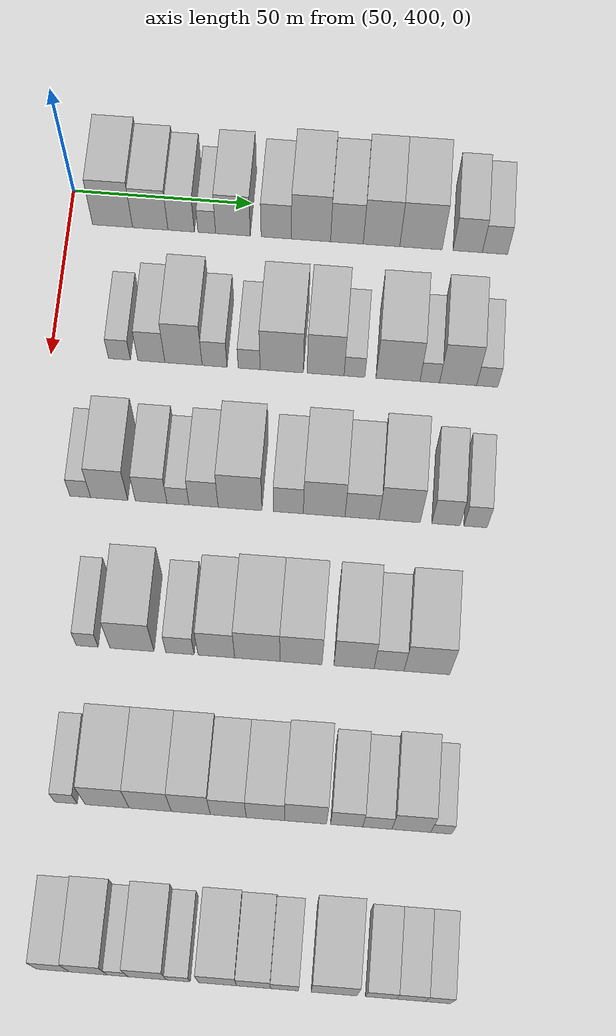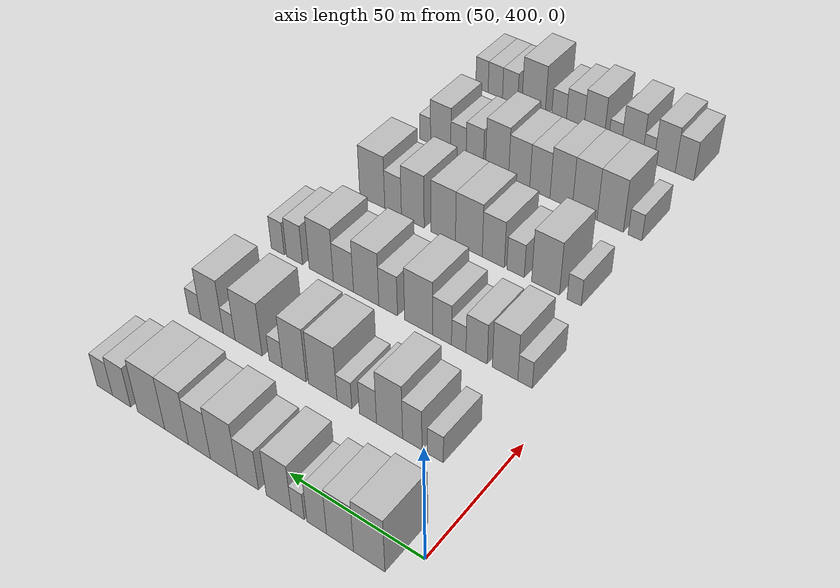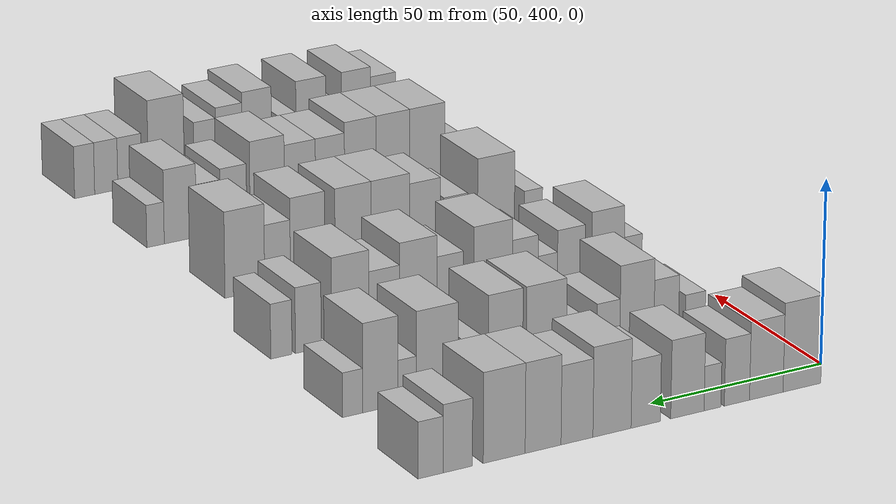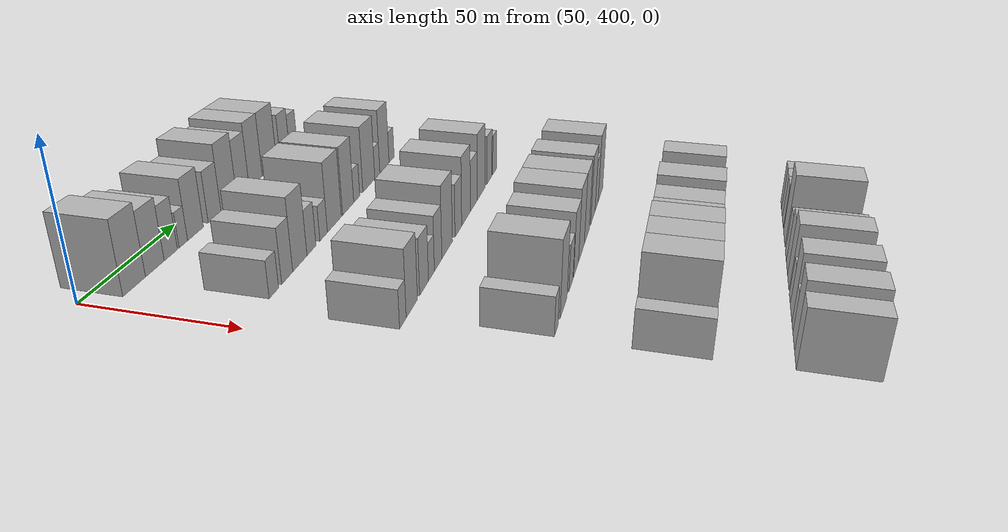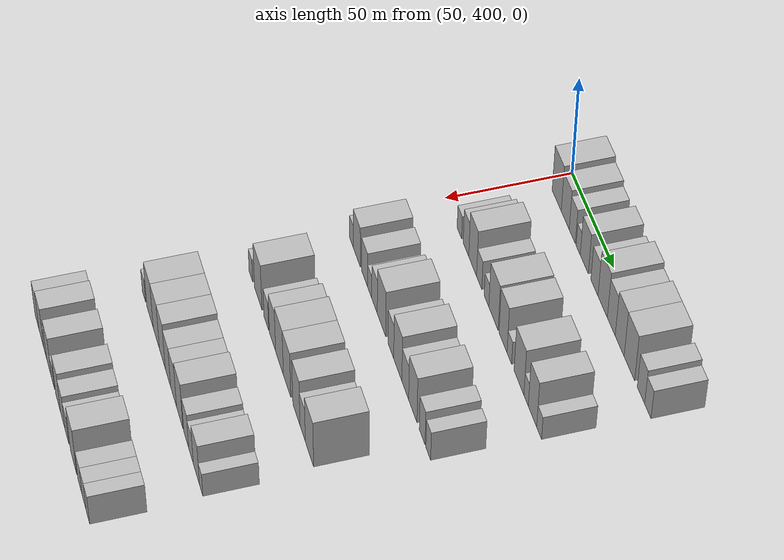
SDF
<sdf version="1.6">
 <world name="default">
  <model name="building_111">
   <static>1</static>
   <pose>50.0000 412.1072 0 0.000000 0.000000 0.000000</pose>
   <link name="link">
    <pose>0 0 12.00 0 0 0</pose>
    <collision name="collision"><geometry><box><size>20.0000 11.1560 24.0000</size></box></geometry></collision>
    <visual name="visual">
     <cast_shadows>0</cast_shadows>
     <geometry><box><size>20.0000 11.1560 24.0000</size></box></geometry>
     <material>
      <script>
       <uri>model://HANNAS_wall/materials/scripts</uri>
       <uri>model://HANNAS_wall/materials/textures</uri>
       <name>vrc/HANNAS_wall</name>
      </script>
     </material>
    </visual>
   </link>
  </model>
  <model name="building_112">
   <static>1</static>
   <pose>50.0000 422.6053 0 0.000000 0.000000 0.000000</pose>
   <link name="link">
    <pose>0 0 10.50 0 0 0</pose>
    <collision name="collision"><geometry><box><size>20.0000 9.8401 21.0000</size></box></geometry></collision>
    <visual name="visual">
     <cast_shadows>0</cast_shadows>
     <geometry><box><size>20.0000 9.8401 21.0000</size></box></geometry>
     <material>
      <script>
       <uri>model://HANNAS_wall/materials/scripts</uri>
       <uri>model://HANNAS_wall/materials/textures</uri>
       <name>vrc/HANNAS_wall</name>
      </script>
     </material>
    </visual>
   </link>
  </model>
  <model name="building_113">
   <static>1</static>
   <pose>50.0000 431.1931 0 0.000000 0.000000 0.000000</pose>
   <link name="link">
    <pose>0 0 9.00 0 0 0</pose>
    <collision name="collision"><geometry><box><size>20.0000 7.3356 18.0000</size></box></geometry></collision>
    <visual name="visual">
     <cast_shadows>0</cast_shadows>
     <geometry><box><size>20.0000 7.3356 18.0000</size></box></geometry>
     <material>
      <script>
       <uri>model://HANNAS_wall/materials/scripts</uri>
       <uri>model://HANNAS_wall/materials/textures</uri>
       <name>vrc/HANNAS_wall</name>
      </script>
     </material>
    </visual>
   </link>
  </model>
  <model name="building_114">
   <static>1</static>
   <pose>50.0000 438.3121 0 0.000000 0.000000 0.000000</pose>
   <link name="link">
    <pose>0 0 6.00 0 0 0</pose>
    <collision name="collision"><geometry><box><size>20.0000 4.9024 12.0000</size></box></geometry></collision>
    <visual name="visual">
     <cast_shadows>0</cast_shadows>
     <geometry><box><size>20.0000 4.9024 12.0000</size></box></geometry>
     <material>
      <script>
       <uri>model://HANNAS_wall/materials/scripts</uri>
       <uri>model://HANNAS_wall/materials/textures</uri>
       <name>vrc/HANNAS_wall</name>
      </script>
     </material>
    </visual>
   </link>
  </model>
  <model name="building_115">
   <static>1</static>
   <pose>50.0000 445.5779 0 0.000000 0.000000 0.000000</pose>
   <link name="link">
    <pose>0 0 10.50 0 0 0</pose>
    <collision name="collision"><geometry><box><size>20.0000 9.6292 21.0000</size></box></geometry></collision>
    <visual name="visual">
     <cast_shadows>0</cast_shadows>
     <geometry><box><size>20.0000 9.6292 21.0000</size></box></geometry>
     <material>
      <script>
       <uri>model://HANNAS_wall/materials/scripts</uri>
       <uri>model://HANNAS_wall/materials/textures</uri>
       <name>vrc/HANNAS_wall</name>
      </script>
     </material>
    </visual>
   </link>
  </model>
  <model name="building_116">
   <static>1</static>
   <pose>50.0000 457.5779 0 0.000000 0.000000 0.000000</pose>
   <link name="link">
    <pose>0 0 9.00 0 0 0</pose>
    <collision name="collision"><geometry><box><size>20.0000 8.3707 18.0000</size></box></geometry></collision>
    <visual name="visual">
     <cast_shadows>0</cast_shadows>
     <geometry><box><size>20.0000 8.3707 18.0000</size></box></geometry>
     <material>
      <script>
       <uri>model://HANNAS_wall/materials/scripts</uri>
       <uri>model://HANNAS_wall/materials/textures</uri>
       <name>vrc/HANNAS_wall</name>
      </script>
     </material>
    </visual>
   </link>
  </model>
  <model name="building_117">
   <static>1</static>
   <pose>50.0000 467.1968 0 0.000000 0.000000 0.000000</pose>
   <link name="link">
    <pose>0 0 12.00 0 0 0</pose>
    <collision name="collision"><geometry><box><size>20.0000 10.8672 24.0000</size></box></geometry></collision>
    <visual name="visual">
     <cast_shadows>0</cast_shadows>
     <geometry><box><size>20.0000 10.8672 24.0000</size></box></geometry>
     <material>
      <script>
       <uri>model://HANNAS_wall/materials/scripts</uri>
       <uri>model://HANNAS_wall/materials/textures</uri>
       <name>vrc/HANNAS_wall</name>
      </script>
     </material>
    </visual>
   </link>
  </model>
  <model name="building_118">
   <static>1</static>
   <pose>50.0000 477.1448 0 0.000000 0.000000 0.000000</pose>
   <link name="link">
    <pose>0 0 10.50 0 0 0</pose>
    <collision name="collision"><geometry><box><size>20.0000 9.0289 21.0000</size></box></geometry></collision>
    <visual name="visual">
     <cast_shadows>0</cast_shadows>
     <geometry><box><size>20.0000 9.0289 21.0000</size></box></geometry>
     <material>
      <script>
       <uri>model://HANNAS_wall/materials/scripts</uri>
       <uri>model://HANNAS_wall/materials/textures</uri>
       <name>vrc/HANNAS_wall</name>
      </script>
     </material>
    </visual>
   </link>
  </model>
  <model name="building_119">
   <static>1</static>
   <pose>50.0000 486.7063 0 0.000000 0.000000 0.000000</pose>
   <link name="link">
    <pose>0 0 12.00 0 0 0</pose>
    <collision name="collision"><geometry><box><size>20.0000 10.0941 24.0000</size></box></geometry></collision>
    <visual name="visual">
     <cast_shadows>0</cast_shadows>
     <geometry><box><size>20.0000 10.0941 24.0000</size></box></geometry>
     <material>
      <script>
       <uri>model://HANNAS_wall/materials/scripts</uri>
       <uri>model://HANNAS_wall/materials/textures</uri>
       <name>vrc/HANNAS_wall</name>
      </script>
     </material>
    </visual>
   </link>
  </model>
  <model name="building_120">
   <static>1</static>
   <pose>50.0000 497.6066 0 0.000000 0.000000 0.000000</pose>
   <link name="link">
    <pose>0 0 12.00 0 0 0</pose>
    <collision name="collision"><geometry><box><size>20.0000 11.7064 24.0000</size></box></geometry></collision>
    <visual name="visual">
     <cast_shadows>0</cast_shadows>
     <geometry><box><size>20.0000 11.7064 24.0000</size></box></geometry>
     <material>
      <script>
       <uri>model://HANNAS_wall/materials/scripts</uri>
       <uri>model://HANNAS_wall/materials/textures</uri>
       <name>vrc/HANNAS_wall</name>
      </script>
     </material>
    </visual>
   </link>
  </model>
  <model name="building_121">
   <static>1</static>
   <pose>50.0000 510.4955 0 0.000000 0.000000 0.000000</pose>
   <link name="link">
    <pose>0 0 9.00 0 0 0</pose>
    <collision name="collision"><geometry><box><size>20.0000 8.0716 18.0000</size></box></geometry></collision>
    <visual name="visual">
     <cast_shadows>0</cast_shadows>
     <geometry><box><size>20.0000 8.0716 18.0000</size></box></geometry>
     <material>
      <script>
       <uri>model://HANNAS_wall/materials/scripts</uri>
       <uri>model://HANNAS_wall/materials/textures</uri>
       <name>vrc/HANNAS_wall</name>
      </script>
     </material>
    </visual>
   </link>
  </model>
  <model name="building_122">
   <static>1</static>
   <pose>50.0000 518.0108 0 0.000000 0.000000 0.000000</pose>
   <link name="link">
    <pose>0 0 7.50 0 0 0</pose>
    <collision name="collision"><geometry><box><size>20.0000 6.9590 15.0000</size></box></geometry></collision>
    <visual name="visual">
     <cast_shadows>0</cast_shadows>
     <geometry><box><size>20.0000 6.9590 15.0000</size></box></geometry>
     <material>
      <script>
       <uri>model://HANNAS_wall/materials/scripts</uri>
       <uri>model://HANNAS_wall/materials/textures</uri>
       <name>vrc/HANNAS_wall</name>
      </script>
     </material>
    </visual>
   </link>
  </model>
  <model name="building_261">
   <static>1</static>
   <pose>90.0000 418.5212 0 0.000000 0.000000 0.000000</pose>
   <link name="link">
    <pose>0 0 6.00 0 0 0</pose>
    <collision name="collision"><geometry><box><size>20.0000 5.9379 12.0000</size></box></geometry></collision>
    <visual name="visual">
     <cast_shadows>0</cast_shadows>
     <geometry><box><size>20.0000 5.9379 12.0000</size></box></geometry>
     <material>
      <script>
       <uri>model://HANNAS_wall/materials/scripts</uri>
       <uri>model://HANNAS_wall/materials/textures</uri>
       <name>vrc/HANNAS_wall</name>
      </script>
     </material>
    </visual>
   </link>
  </model>
  <model name="building_262">
   <static>1</static>
   <pose>90.0000 427.1516 0 0.000000 0.000000 0.000000</pose>
   <link name="link">
    <pose>0 0 9.00 0 0 0</pose>
    <collision name="collision"><geometry><box><size>20.0000 7.3228 18.0000</size></box></geometry></collision>
    <visual name="visual">
     <cast_shadows>0</cast_shadows>
     <geometry><box><size>20.0000 7.3228 18.0000</size></box></geometry>
     <material>
      <script>
       <uri>model://HANNAS_wall/materials/scripts</uri>
       <uri>model://HANNAS_wall/materials/textures</uri>
       <name>vrc/HANNAS_wall</name>
      </script>
     </material>
    </visual>
   </link>
  </model>
  <model name="building_263">
   <static>1</static>
   <pose>90.0000 435.8450 0 0.000000 0.000000 0.000000</pose>
   <link name="link">
    <pose>0 0 12.00 0 0 0</pose>
    <collision name="collision"><geometry><box><size>20.0000 10.0641 24.0000</size></box></geometry></collision>
    <visual name="visual">
     <cast_shadows>0</cast_shadows>
     <geometry><box><size>20.0000 10.0641 24.0000</size></box></geometry>
     <material>
      <script>
       <uri>model://HANNAS_wall/materials/scripts</uri>
       <uri>model://HANNAS_wall/materials/textures</uri>
       <name>vrc/HANNAS_wall</name>
      </script>
     </material>
    </visual>
   </link>
  </model>
  <model name="building_264">
   <static>1</static>
   <pose>90.0000 444.2321 0 0.000000 0.000000 0.000000</pose>
   <link name="link">
    <pose>0 0 7.50 0 0 0</pose>
    <collision name="collision"><geometry><box><size>20.0000 6.7101 15.0000</size></box></geometry></collision>
    <visual name="visual">
     <cast_shadows>0</cast_shadows>
     <geometry><box><size>20.0000 6.7101 15.0000</size></box></geometry>
     <material>
      <script>
       <uri>model://HANNAS_wall/materials/scripts</uri>
       <uri>model://HANNAS_wall/materials/textures</uri>
       <name>vrc/HANNAS_wall</name>
      </script>
     </material>
    </visual>
   </link>
  </model>
  <model name="building_265">
   <static>1</static>
   <pose>90.0000 453.5494 0 0.000000 0.000000 0.000000</pose>
   <link name="link">
    <pose>0 0 6.00 0 0 0</pose>
    <collision name="collision"><geometry><box><size>20.0000 5.9244 12.0000</size></box></geometry></collision>
    <visual name="visual">
     <cast_shadows>0</cast_shadows>
     <geometry><box><size>20.0000 5.9244 12.0000</size></box></geometry>
     <material>
      <script>
       <uri>model://HANNAS_wall/materials/scripts</uri>
       <uri>model://HANNAS_wall/materials/textures</uri>
       <name>vrc/HANNAS_wall</name>
      </script>
     </material>
    </visual>
   </link>
  </model>
  <model name="building_266">
   <static>1</static>
   <pose>90.0000 462.3372 0 0.000000 0.000000 0.000000</pose>
   <link name="link">
    <pose>0 0 12.00 0 0 0</pose>
    <collision name="collision"><geometry><box><size>20.0000 11.6512 24.0000</size></box></geometry></collision>
    <visual name="visual">
     <cast_shadows>0</cast_shadows>
     <geometry><box><size>20.0000 11.6512 24.0000</size></box></geometry>
     <material>
      <script>
       <uri>model://HANNAS_wall/materials/scripts</uri>
       <uri>model://HANNAS_wall/materials/textures</uri>
       <name>vrc/HANNAS_wall</name>
      </script>
     </material>
    </visual>
   </link>
  </model>
  <model name="building_267">
   <static>1</static>
   <pose>90.0000 474.1349 0 0.000000 0.000000 0.000000</pose>
   <link name="link">
    <pose>0 0 12.00 0 0 0</pose>
    <collision name="collision"><geometry><box><size>20.0000 9.9443 24.0000</size></box></geometry></collision>
    <visual name="visual">
     <cast_shadows>0</cast_shadows>
     <geometry><box><size>20.0000 9.9443 24.0000</size></box></geometry>
     <material>
      <script>
       <uri>model://HANNAS_wall/materials/scripts</uri>
       <uri>model://HANNAS_wall/materials/textures</uri>
       <name>vrc/HANNAS_wall</name>
      </script>
     </material>
    </visual>
   </link>
  </model>
  <model name="building_268">
   <static>1</static>
   <pose>90.0000 481.8991 0 0.000000 0.000000 0.000000</pose>
   <link name="link">
    <pose>0 0 6.00 0 0 0</pose>
    <collision name="collision"><geometry><box><size>20.0000 5.5841 12.0000</size></box></geometry></collision>
    <visual name="visual">
     <cast_shadows>0</cast_shadows>
     <geometry><box><size>20.0000 5.5841 12.0000</size></box></geometry>
     <material>
      <script>
       <uri>model://HANNAS_wall/materials/scripts</uri>
       <uri>model://HANNAS_wall/materials/textures</uri>
       <name>vrc/HANNAS_wall</name>
      </script>
     </material>
    </visual>
   </link>
  </model>
  <model name="building_269">
   <static>1</static>
   <pose>90.0000 493.5933 0 0.000000 0.000000 0.000000</pose>
   <link name="link">
    <pose>0 0 12.00 0 0 0</pose>
    <collision name="collision"><geometry><box><size>20.0000 11.8042 24.0000</size></box></geometry></collision>
    <visual name="visual">
     <cast_shadows>0</cast_shadows>
     <geometry><box><size>20.0000 11.8042 24.0000</size></box></geometry>
     <material>
      <script>
       <uri>model://HANNAS_wall/materials/scripts</uri>
       <uri>model://HANNAS_wall/materials/textures</uri>
       <name>vrc/HANNAS_wall</name>
      </script>
     </material>
    </visual>
   </link>
  </model>
  <model name="building_270">
   <static>1</static>
   <pose>90.0000 502.1211 0 0.000000 0.000000 0.000000</pose>
   <link name="link">
    <pose>0 0 6.00 0 0 0</pose>
    <collision name="collision"><geometry><box><size>20.0000 5.2514 12.0000</size></box></geometry></collision>
    <visual name="visual">
     <cast_shadows>0</cast_shadows>
     <geometry><box><size>20.0000 5.2514 12.0000</size></box></geometry>
     <material>
      <script>
       <uri>model://HANNAS_wall/materials/scripts</uri>
       <uri>model://HANNAS_wall/materials/textures</uri>
       <name>vrc/HANNAS_wall</name>
      </script>
     </material>
    </visual>
   </link>
  </model>
  <model name="building_271">
   <static>1</static>
   <pose>90.0000 509.7115 0 0.000000 0.000000 0.000000</pose>
   <link name="link">
    <pose>0 0 12.00 0 0 0</pose>
    <collision name="collision"><geometry><box><size>20.0000 9.9293 24.0000</size></box></geometry></collision>
    <visual name="visual">
     <cast_shadows>0</cast_shadows>
     <geometry><box><size>20.0000 9.9293 24.0000</size></box></geometry>
     <material>
      <script>
       <uri>model://HANNAS_wall/materials/scripts</uri>
       <uri>model://HANNAS_wall/materials/textures</uri>
       <name>vrc/HANNAS_wall</name>
      </script>
     </material>
    </visual>
   </link>
  </model>
  <model name="building_272">
   <static>1</static>
   <pose>90.0000 517.5202 0 0.000000 0.000000 0.000000</pose>
   <link name="link">
    <pose>0 0 6.00 0 0 0</pose>
    <collision name="collision"><geometry><box><size>20.0000 5.6882 12.0000</size></box></geometry></collision>
    <visual name="visual">
     <cast_shadows>0</cast_shadows>
     <geometry><box><size>20.0000 5.6882 12.0000</size></box></geometry>
     <material>
      <script>
       <uri>model://HANNAS_wall/materials/scripts</uri>
       <uri>model://HANNAS_wall/materials/textures</uri>
       <name>vrc/HANNAS_wall</name>
      </script>
     </material>
    </visual>
   </link>
  </model>
  <model name="building_391">
   <static>1</static>
   <pose>130.0000 412.7051 0 0.000000 0.000000 0.000000</pose>
   <link name="link">
    <pose>0 0 6.00 0 0 0</pose>
    <collision name="collision"><geometry><box><size>20.0000 5.4526 12.0000</size></box></geometry></collision>
    <visual name="visual">
     <cast_shadows>0</cast_shadows>
     <geometry><box><size>20.0000 5.4526 12.0000</size></box></geometry>
     <material>
      <script>
       <uri>model://HANNAS_wall/materials/scripts</uri>
       <uri>model://HANNAS_wall/materials/textures</uri>
       <name>vrc/HANNAS_wall</name>
      </script>
     </material>
    </visual>
   </link>
  </model>
  <model name="building_392">
   <static>1</static>
   <pose>130.0000 420.3183 0 0.000000 0.000000 0.000000</pose>
   <link name="link">
    <pose>0 0 10.50 0 0 0</pose>
    <collision name="collision"><geometry><box><size>20.0000 9.7739 21.0000</size></box></geometry></collision>
    <visual name="visual">
     <cast_shadows>0</cast_shadows>
     <geometry><box><size>20.0000 9.7739 21.0000</size></box></geometry>
     <material>
      <script>
       <uri>model://HANNAS_wall/materials/scripts</uri>
       <uri>model://HANNAS_wall/materials/textures</uri>
       <name>vrc/HANNAS_wall</name>
      </script>
     </material>
    </visual>
   </link>
  </model>
  <model name="building_393">
   <static>1</static>
   <pose>130.0000 431.3575 0 0.000000 0.000000 0.000000</pose>
   <link name="link">
    <pose>0 0 9.00 0 0 0</pose>
    <collision name="collision"><geometry><box><size>20.0000 8.3046 18.0000</size></box></geometry></collision>
    <visual name="visual">
     <cast_shadows>0</cast_shadows>
     <geometry><box><size>20.0000 8.3046 18.0000</size></box></geometry>
     <material>
      <script>
       <uri>model://HANNAS_wall/materials/scripts</uri>
       <uri>model://HANNAS_wall/materials/textures</uri>
       <name>vrc/HANNAS_wall</name>
      </script>
     </material>
    </visual>
   </link>
  </model>
  <model name="building_394">
   <static>1</static>
   <pose>130.0000 438.3950 0 0.000000 0.000000 0.000000</pose>
   <link name="link">
    <pose>0 0 6.00 0 0 0</pose>
    <collision name="collision"><geometry><box><size>20.0000 5.7704 12.0000</size></box></geometry></collision>
    <visual name="visual">
     <cast_shadows>0</cast_shadows>
     <geometry><box><size>20.0000 5.7704 12.0000</size></box></geometry>
     <material>
      <script>
       <uri>model://HANNAS_wall/materials/scripts</uri>
       <uri>model://HANNAS_wall/materials/textures</uri>
       <name>vrc/HANNAS_wall</name>
      </script>
     </material>
    </visual>
   </link>
  </model>
  <model name="building_395">
   <static>1</static>
   <pose>130.0000 445.1022 0 0.000000 0.000000 0.000000</pose>
   <link name="link">
    <pose>0 0 9.00 0 0 0</pose>
    <collision name="collision"><geometry><box><size>20.0000 7.6439 18.0000</size></box></geometry></collision>
    <visual name="visual">
     <cast_shadows>0</cast_shadows>
     <geometry><box><size>20.0000 7.6439 18.0000</size></box></geometry>
     <material>
      <script>
       <uri>model://HANNAS_wall/materials/scripts</uri>
       <uri>model://HANNAS_wall/materials/textures</uri>
       <name>vrc/HANNAS_wall</name>
      </script>
     </material>
    </visual>
   </link>
  </model>
  <model name="building_396">
   <static>1</static>
   <pose>130.0000 454.6564 0 0.000000 0.000000 0.000000</pose>
   <link name="link">
    <pose>0 0 12.00 0 0 0</pose>
    <collision name="collision"><geometry><box><size>20.0000 11.4645 24.0000</size></box></geometry></collision>
    <visual name="visual">
     <cast_shadows>0</cast_shadows>
     <geometry><box><size>20.0000 11.4645 24.0000</size></box></geometry>
     <material>
      <script>
       <uri>model://HANNAS_wall/materials/scripts</uri>
       <uri>model://HANNAS_wall/materials/textures</uri>
       <name>vrc/HANNAS_wall</name>
      </script>
     </material>
    </visual>
   </link>
  </model>
  <model name="building_397">
   <static>1</static>
   <pose>130.0000 467.3046 0 0.000000 0.000000 0.000000</pose>
   <link name="link">
    <pose>0 0 9.00 0 0 0</pose>
    <collision name="collision"><geometry><box><size>20.0000 7.8317 18.0000</size></box></geometry></collision>
    <visual name="visual">
     <cast_shadows>0</cast_shadows>
     <geometry><box><size>20.0000 7.8317 18.0000</size></box></geometry>
     <material>
      <script>
       <uri>model://HANNAS_wall/materials/scripts</uri>
       <uri>model://HANNAS_wall/materials/textures</uri>
       <name>vrc/HANNAS_wall</name>
      </script>
     </material>
    </visual>
   </link>
  </model>
  <model name="building_398">
   <static>1</static>
   <pose>130.0000 476.6585 0 0.000000 0.000000 0.000000</pose>
   <link name="link">
    <pose>0 0 12.00 0 0 0</pose>
    <collision name="collision"><geometry><box><size>20.0000 10.8762 24.0000</size></box></geometry></collision>
    <visual name="visual">
     <cast_shadows>0</cast_shadows>
     <geometry><box><size>20.0000 10.8762 24.0000</size></box></geometry>
     <material>
      <script>
       <uri>model://HANNAS_wall/materials/scripts</uri>
       <uri>model://HANNAS_wall/materials/textures</uri>
       <name>vrc/HANNAS_wall</name>
      </script>
     </material>
    </visual>
   </link>
  </model>
  <model name="building_399">
   <static>1</static>
   <pose>130.0000 486.5366 0 0.000000 0.000000 0.000000</pose>
   <link name="link">
    <pose>0 0 9.00 0 0 0</pose>
    <collision name="collision"><geometry><box><size>20.0000 8.8799 18.0000</size></box></geometry></collision>
    <visual name="visual">
     <cast_shadows>0</cast_shadows>
     <geometry><box><size>20.0000 8.8799 18.0000</size></box></geometry>
     <material>
      <script>
       <uri>model://HANNAS_wall/materials/scripts</uri>
       <uri>model://HANNAS_wall/materials/textures</uri>
       <name>vrc/HANNAS_wall</name>
      </script>
     </material>
    </visual>
   </link>
  </model>
  <model name="building_400">
   <static>1</static>
   <pose>130.0000 496.3535 0 0.000000 0.000000 0.000000</pose>
   <link name="link">
    <pose>0 0 12.00 0 0 0</pose>
    <collision name="collision"><geometry><box><size>20.0000 10.7540 24.0000</size></box></geometry></collision>
    <visual name="visual">
     <cast_shadows>0</cast_shadows>
     <geometry><box><size>20.0000 10.7540 24.0000</size></box></geometry>
     <material>
      <script>
       <uri>model://HANNAS_wall/materials/scripts</uri>
       <uri>model://HANNAS_wall/materials/textures</uri>
       <name>vrc/HANNAS_wall</name>
      </script>
     </material>
    </visual>
   </link>
  </model>
  <model name="building_401">
   <static>1</static>
   <pose>130.0000 508.4181 0 0.000000 0.000000 0.000000</pose>
   <link name="link">
    <pose>0 0 9.00 0 0 0</pose>
    <collision name="collision"><geometry><box><size>20.0000 7.3752 18.0000</size></box></geometry></collision>
    <visual name="visual">
     <cast_shadows>0</cast_shadows>
     <geometry><box><size>20.0000 7.3752 18.0000</size></box></geometry>
     <material>
      <script>
       <uri>model://HANNAS_wall/materials/scripts</uri>
       <uri>model://HANNAS_wall/materials/textures</uri>
       <name>vrc/HANNAS_wall</name>
      </script>
     </material>
    </visual>
   </link>
  </model>
  <model name="building_402">
   <static>1</static>
   <pose>130.0000 516.1237 0 0.000000 0.000000 0.000000</pose>
   <link name="link">
    <pose>0 0 7.50 0 0 0</pose>
    <collision name="collision"><geometry><box><size>20.0000 6.0360 15.0000</size></box></geometry></collision>
    <visual name="visual">
     <cast_shadows>0</cast_shadows>
     <geometry><box><size>20.0000 6.0360 15.0000</size></box></geometry>
     <material>
      <script>
       <uri>model://HANNAS_wall/materials/scripts</uri>
       <uri>model://HANNAS_wall/materials/textures</uri>
       <name>vrc/HANNAS_wall</name>
      </script>
     </material>
    </visual>
   </link>
  </model>
  <model name="building_528">
   <static>1</static>
   <pose>170.0000 419.2942 0 0.000000 0.000000 0.000000</pose>
   <link name="link">
    <pose>0 0 6.00 0 0 0</pose>
    <collision name="collision"><geometry><box><size>20.0000 5.5793 12.0000</size></box></geometry></collision>
    <visual name="visual">
     <cast_shadows>0</cast_shadows>
     <geometry><box><size>20.0000 5.5793 12.0000</size></box></geometry>
     <material>
      <script>
       <uri>model://HANNAS_wall/materials/scripts</uri>
       <uri>model://HANNAS_wall/materials/textures</uri>
       <name>vrc/HANNAS_wall</name>
      </script>
     </material>
    </visual>
   </link>
  </model>
  <model name="building_529">
   <static>1</static>
   <pose>170.0000 430.7110 0 0.000000 0.000000 0.000000</pose>
   <link name="link">
    <pose>0 0 12.00 0 0 0</pose>
    <collision name="collision"><geometry><box><size>20.0000 11.2542 24.0000</size></box></geometry></collision>
    <visual name="visual">
     <cast_shadows>0</cast_shadows>
     <geometry><box><size>20.0000 11.2542 24.0000</size></box></geometry>
     <material>
      <script>
       <uri>model://HANNAS_wall/materials/scripts</uri>
       <uri>model://HANNAS_wall/materials/textures</uri>
       <name>vrc/HANNAS_wall</name>
      </script>
     </material>
    </visual>
   </link>
  </model>
  <model name="building_530">
   <static>1</static>
   <pose>170.0000 442.9475 0 0.000000 0.000000 0.000000</pose>
   <link name="link">
    <pose>0 0 7.50 0 0 0</pose>
    <collision name="collision"><geometry><box><size>20.0000 7.2188 15.0000</size></box></geometry></collision>
    <visual name="visual">
     <cast_shadows>0</cast_shadows>
     <geometry><box><size>20.0000 7.2188 15.0000</size></box></geometry>
     <material>
      <script>
       <uri>model://HANNAS_wall/materials/scripts</uri>
       <uri>model://HANNAS_wall/materials/textures</uri>
       <name>vrc/HANNAS_wall</name>
      </script>
     </material>
    </visual>
   </link>
  </model>
  <model name="building_531">
   <static>1</static>
   <pose>170.0000 452.2065 0 0.000000 0.000000 0.000000</pose>
   <link name="link">
    <pose>0 0 10.50 0 0 0</pose>
    <collision name="collision"><geometry><box><size>20.0000 9.2992 21.0000</size></box></geometry></collision>
    <visual name="visual">
     <cast_shadows>0</cast_shadows>
     <geometry><box><size>20.0000 9.2992 21.0000</size></box></geometry>
     <material>
      <script>
       <uri>model://HANNAS_wall/materials/scripts</uri>
       <uri>model://HANNAS_wall/materials/textures</uri>
       <name>vrc/HANNAS_wall</name>
      </script>
     </material>
    </visual>
   </link>
  </model>
  <model name="building_532">
   <static>1</static>
   <pose>170.0000 462.5871 0 0.000000 0.000000 0.000000</pose>
   <link name="link">
    <pose>0 0 12.00 0 0 0</pose>
    <collision name="collision"><geometry><box><size>20.0000 11.4619 24.0000</size></box></geometry></collision>
    <visual name="visual">
     <cast_shadows>0</cast_shadows>
     <geometry><box><size>20.0000 11.4619 24.0000</size></box></geometry>
     <material>
      <script>
       <uri>model://HANNAS_wall/materials/scripts</uri>
       <uri>model://HANNAS_wall/materials/textures</uri>
       <name>vrc/HANNAS_wall</name>
      </script>
     </material>
    </visual>
   </link>
  </model>
  <model name="building_533">
   <static>1</static>
   <pose>170.0000 473.6753 0 0.000000 0.000000 0.000000</pose>
   <link name="link">
    <pose>0 0 12.00 0 0 0</pose>
    <collision name="collision"><geometry><box><size>20.0000 10.7146 24.0000</size></box></geometry></collision>
    <visual name="visual">
     <cast_shadows>0</cast_shadows>
     <geometry><box><size>20.0000 10.7146 24.0000</size></box></geometry>
     <material>
      <script>
       <uri>model://HANNAS_wall/materials/scripts</uri>
       <uri>model://HANNAS_wall/materials/textures</uri>
       <name>vrc/HANNAS_wall</name>
      </script>
     </material>
    </visual>
   </link>
  </model>
  <model name="building_534">
   <static>1</static>
   <pose>170.0000 487.1269 0 0.000000 0.000000 0.000000</pose>
   <link name="link">
    <pose>0 0 12.00 0 0 0</pose>
    <collision name="collision"><geometry><box><size>20.0000 10.1886 24.0000</size></box></geometry></collision>
    <visual name="visual">
     <cast_shadows>0</cast_shadows>
     <geometry><box><size>20.0000 10.1886 24.0000</size></box></geometry>
     <material>
      <script>
       <uri>model://HANNAS_wall/materials/scripts</uri>
       <uri>model://HANNAS_wall/materials/textures</uri>
       <name>vrc/HANNAS_wall</name>
      </script>
     </material>
    </visual>
   </link>
  </model>
  <model name="building_535">
   <static>1</static>
   <pose>170.0000 496.0026 0 0.000000 0.000000 0.000000</pose>
   <link name="link">
    <pose>0 0 9.00 0 0 0</pose>
    <collision name="collision"><geometry><box><size>20.0000 7.5627 18.0000</size></box></geometry></collision>
    <visual name="visual">
     <cast_shadows>0</cast_shadows>
     <geometry><box><size>20.0000 7.5627 18.0000</size></box></geometry>
     <material>
      <script>
       <uri>model://HANNAS_wall/materials/scripts</uri>
       <uri>model://HANNAS_wall/materials/textures</uri>
       <name>vrc/HANNAS_wall</name>
      </script>
     </material>
    </visual>
   </link>
  </model>
  <model name="building_536">
   <static>1</static>
   <pose>170.0000 505.5654 0 0.000000 0.000000 0.000000</pose>
   <link name="link">
    <pose>0 0 12.00 0 0 0</pose>
    <collision name="collision"><geometry><box><size>20.0000 11.5629 24.0000</size></box></geometry></collision>
    <visual name="visual">
     <cast_shadows>0</cast_shadows>
     <geometry><box><size>20.0000 11.5629 24.0000</size></box></geometry>
     <material>
      <script>
       <uri>model://HANNAS_wall/materials/scripts</uri>
       <uri>model://HANNAS_wall/materials/textures</uri>
       <name>vrc/HANNAS_wall</name>
      </script>
     </material>
    </visual>
   </link>
  </model>
  <model name="building_657">
   <static>1</static>
   <pose>210.0000 418.7847 0 0.000000 0.000000 0.000000</pose>
   <link name="link">
    <pose>0 0 6.00 0 0 0</pose>
    <collision name="collision"><geometry><box><size>20.0000 5.5635 12.0000</size></box></geometry></collision>
    <visual name="visual">
     <cast_shadows>0</cast_shadows>
     <geometry><box><size>20.0000 5.5635 12.0000</size></box></geometry>
     <material>
      <script>
       <uri>model://HANNAS_wall/materials/scripts</uri>
       <uri>model://HANNAS_wall/materials/textures</uri>
       <name>vrc/HANNAS_wall</name>
      </script>
     </material>
    </visual>
   </link>
  </model>
  <model name="building_658">
   <static>1</static>
   <pose>210.0000 428.9993 0 0.000000 0.000000 0.000000</pose>
   <link name="link">
    <pose>0 0 12.00 0 0 0</pose>
    <collision name="collision"><geometry><box><size>20.0000 10.8658 24.0000</size></box></geometry></collision>
    <visual name="visual">
     <cast_shadows>0</cast_shadows>
     <geometry><box><size>20.0000 10.8658 24.0000</size></box></geometry>
     <material>
      <script>
       <uri>model://HANNAS_wall/materials/scripts</uri>
       <uri>model://HANNAS_wall/materials/textures</uri>
       <name>vrc/HANNAS_wall</name>
      </script>
     </material>
    </visual>
   </link>
  </model>
  <model name="building_659">
   <static>1</static>
   <pose>210.0000 439.6423 0 0.000000 0.000000 0.000000</pose>
   <link name="link">
    <pose>0 0 12.00 0 0 0</pose>
    <collision name="collision"><geometry><box><size>20.0000 10.4201 24.0000</size></box></geometry></collision>
    <visual name="visual">
     <cast_shadows>0</cast_shadows>
     <geometry><box><size>20.0000 10.4201 24.0000</size></box></geometry>
     <material>
      <script>
       <uri>model://HANNAS_wall/materials/scripts</uri>
       <uri>model://HANNAS_wall/materials/textures</uri>
       <name>vrc/HANNAS_wall</name>
      </script>
     </material>
    </visual>
   </link>
  </model>
  <model name="building_660">
   <static>1</static>
   <pose>210.0000 449.6558 0 0.000000 0.000000 0.000000</pose>
   <link name="link">
    <pose>0 0 12.00 0 0 0</pose>
    <collision name="collision"><geometry><box><size>20.0000 9.6069 24.0000</size></box></geometry></collision>
    <visual name="visual">
     <cast_shadows>0</cast_shadows>
     <geometry><box><size>20.0000 9.6069 24.0000</size></box></geometry>
     <material>
      <script>
       <uri>model://HANNAS_wall/materials/scripts</uri>
       <uri>model://HANNAS_wall/materials/textures</uri>
       <name>vrc/HANNAS_wall</name>
      </script>
     </material>
    </visual>
   </link>
  </model>
  <model name="building_661">
   <static>1</static>
   <pose>210.0000 458.8757 0 0.000000 0.000000 0.000000</pose>
   <link name="link">
    <pose>0 0 10.50 0 0 0</pose>
    <collision name="collision"><geometry><box><size>20.0000 8.8331 21.0000</size></box></geometry></collision>
    <visual name="visual">
     <cast_shadows>0</cast_shadows>
     <geometry><box><size>20.0000 8.8331 21.0000</size></box></geometry>
     <material>
      <script>
       <uri>model://HANNAS_wall/materials/scripts</uri>
       <uri>model://HANNAS_wall/materials/textures</uri>
       <name>vrc/HANNAS_wall</name>
      </script>
     </material>
    </visual>
   </link>
  </model>
  <model name="building_662">
   <static>1</static>
   <pose>210.0000 467.9898 0 0.000000 0.000000 0.000000</pose>
   <link name="link">
    <pose>0 0 10.50 0 0 0</pose>
    <collision name="collision"><geometry><box><size>20.0000 9.3950 21.0000</size></box></geometry></collision>
    <visual name="visual">
     <cast_shadows>0</cast_shadows>
     <geometry><box><size>20.0000 9.3950 21.0000</size></box></geometry>
     <material>
      <script>
       <uri>model://HANNAS_wall/materials/scripts</uri>
       <uri>model://HANNAS_wall/materials/textures</uri>
       <name>vrc/HANNAS_wall</name>
      </script>
     </material>
    </visual>
   </link>
  </model>
  <model name="building_663">
   <static>1</static>
   <pose>210.0000 477.8688 0 0.000000 0.000000 0.000000</pose>
   <link name="link">
    <pose>0 0 12.00 0 0 0</pose>
    <collision name="collision"><geometry><box><size>20.0000 10.3629 24.0000</size></box></geometry></collision>
    <visual name="visual">
     <cast_shadows>0</cast_shadows>
     <geometry><box><size>20.0000 10.3629 24.0000</size></box></geometry>
     <material>
      <script>
       <uri>model://HANNAS_wall/materials/scripts</uri>
       <uri>model://HANNAS_wall/materials/textures</uri>
       <name>vrc/HANNAS_wall</name>
      </script>
     </material>
    </visual>
   </link>
  </model>
  <model name="building_664">
   <static>1</static>
   <pose>210.0000 488.0130 0 0.000000 0.000000 0.000000</pose>
   <link name="link">
    <pose>0 0 9.00 0 0 0</pose>
    <collision name="collision"><geometry><box><size>20.0000 7.9256 18.0000</size></box></geometry></collision>
    <visual name="visual">
     <cast_shadows>0</cast_shadows>
     <geometry><box><size>20.0000 7.9256 18.0000</size></box></geometry>
     <material>
      <script>
       <uri>model://HANNAS_wall/materials/scripts</uri>
       <uri>model://HANNAS_wall/materials/textures</uri>
       <name>vrc/HANNAS_wall</name>
      </script>
     </material>
    </visual>
   </link>
  </model>
  <model name="building_665">
   <static>1</static>
   <pose>210.0000 495.5444 0 0.000000 0.000000 0.000000</pose>
   <link name="link">
    <pose>0 0 7.50 0 0 0</pose>
    <collision name="collision"><geometry><box><size>20.0000 7.1372 15.0000</size></box></geometry></collision>
    <visual name="visual">
     <cast_shadows>0</cast_shadows>
     <geometry><box><size>20.0000 7.1372 15.0000</size></box></geometry>
     <material>
      <script>
       <uri>model://HANNAS_wall/materials/scripts</uri>
       <uri>model://HANNAS_wall/materials/textures</uri>
       <name>vrc/HANNAS_wall</name>
      </script>
     </material>
    </visual>
   </link>
  </model>
  <model name="building_666">
   <static>1</static>
   <pose>210.0000 503.8769 0 0.000000 0.000000 0.000000</pose>
   <link name="link">
    <pose>0 0 10.50 0 0 0</pose>
    <collision name="collision"><geometry><box><size>20.0000 9.5278 21.0000</size></box></geometry></collision>
    <visual name="visual">
     <cast_shadows>0</cast_shadows>
     <geometry><box><size>20.0000 9.5278 21.0000</size></box></geometry>
     <material>
      <script>
       <uri>model://HANNAS_wall/materials/scripts</uri>
       <uri>model://HANNAS_wall/materials/textures</uri>
       <name>vrc/HANNAS_wall</name>
      </script>
     </material>
    </visual>
   </link>
  </model>
  <model name="building_667">
   <static>1</static>
   <pose>210.0000 511.2175 0 0.000000 0.000000 0.000000</pose>
   <link name="link">
    <pose>0 0 6.00 0 0 0</pose>
    <collision name="collision"><geometry><box><size>20.0000 5.1535 12.0000</size></box></geometry></collision>
    <visual name="visual">
     <cast_shadows>0</cast_shadows>
     <geometry><box><size>20.0000 5.1535 12.0000</size></box></geometry>
     <material>
      <script>
       <uri>model://HANNAS_wall/materials/scripts</uri>
       <uri>model://HANNAS_wall/materials/textures</uri>
       <name>vrc/HANNAS_wall</name>
      </script>
     </material>
    </visual>
   </link>
  </model>
  <model name="building_795">
   <static>1</static>
   <pose>250.0000 420.6013 0 0.000000 0.000000 0.000000</pose>
   <link name="link">
    <pose>0 0 9.00 0 0 0</pose>
    <collision name="collision"><geometry><box><size>20.0000 7.8373 18.0000</size></box></geometry></collision>
    <visual name="visual">
     <cast_shadows>0</cast_shadows>
     <geometry><box><size>20.0000 7.8373 18.0000</size></box></geometry>
     <material>
      <script>
       <uri>model://HANNAS_wall/materials/scripts</uri>
       <uri>model://HANNAS_wall/materials/textures</uri>
       <name>vrc/HANNAS_wall</name>
      </script>
     </material>
    </visual>
   </link>
  </model>
  <model name="building_796">
   <static>1</static>
   <pose>250.0000 429.0600 0 0.000000 0.000000 0.000000</pose>
   <link name="link">
    <pose>0 0 10.50 0 0 0</pose>
    <collision name="collision"><geometry><box><size>20.0000 9.0802 21.0000</size></box></geometry></collision>
    <visual name="visual">
     <cast_shadows>0</cast_shadows>
     <geometry><box><size>20.0000 9.0802 21.0000</size></box></geometry>
     <material>
      <script>
       <uri>model://HANNAS_wall/materials/scripts</uri>
       <uri>model://HANNAS_wall/materials/textures</uri>
       <name>vrc/HANNAS_wall</name>
      </script>
     </material>
    </visual>
   </link>
  </model>
  <model name="building_797">
   <static>1</static>
   <pose>250.0000 436.0790 0 0.000000 0.000000 0.000000</pose>
   <link name="link">
    <pose>0 0 6.00 0 0 0</pose>
    <collision name="collision"><geometry><box><size>20.0000 4.9577 12.0000</size></box></geometry></collision>
    <visual name="visual">
     <cast_shadows>0</cast_shadows>
     <geometry><box><size>20.0000 4.9577 12.0000</size></box></geometry>
     <material>
      <script>
       <uri>model://HANNAS_wall/materials/scripts</uri>
       <uri>model://HANNAS_wall/materials/textures</uri>
       <name>vrc/HANNAS_wall</name>
      </script>
     </material>
    </visual>
   </link>
  </model>
  <model name="building_798">
   <static>1</static>
   <pose>250.0000 443.1977 0 0.000000 0.000000 0.000000</pose>
   <link name="link">
    <pose>0 0 10.50 0 0 0</pose>
    <collision name="collision"><geometry><box><size>20.0000 9.2797 21.0000</size></box></geometry></collision>
    <visual name="visual">
     <cast_shadows>0</cast_shadows>
     <geometry><box><size>20.0000 9.2797 21.0000</size></box></geometry>
     <material>
      <script>
       <uri>model://HANNAS_wall/materials/scripts</uri>
       <uri>model://HANNAS_wall/materials/textures</uri>
       <name>vrc/HANNAS_wall</name>
      </script>
     </material>
    </visual>
   </link>
  </model>
  <model name="building_799">
   <static>1</static>
   <pose>250.0000 450.6429 0 0.000000 0.000000 0.000000</pose>
   <link name="link">
    <pose>0 0 6.00 0 0 0</pose>
    <collision name="collision"><geometry><box><size>20.0000 5.6109 12.0000</size></box></geometry></collision>
    <visual name="visual">
     <cast_shadows>0</cast_shadows>
     <geometry><box><size>20.0000 5.6109 12.0000</size></box></geometry>
     <material>
      <script>
       <uri>model://HANNAS_wall/materials/scripts</uri>
       <uri>model://HANNAS_wall/materials/textures</uri>
       <name>vrc/HANNAS_wall</name>
      </script>
     </material>
    </visual>
   </link>
  </model>
  <model name="building_800">
   <static>1</static>
   <pose>250.0000 459.9858 0 0.000000 0.000000 0.000000</pose>
   <link name="link">
    <pose>0 0 10.50 0 0 0</pose>
    <collision name="collision"><geometry><box><size>20.0000 9.0748 21.0000</size></box></geometry></collision>
    <visual name="visual">
     <cast_shadows>0</cast_shadows>
     <geometry><box><size>20.0000 9.0748 21.0000</size></box></geometry>
     <material>
      <script>
       <uri>model://HANNAS_wall/materials/scripts</uri>
       <uri>model://HANNAS_wall/materials/textures</uri>
       <name>vrc/HANNAS_wall</name>
      </script>
     </material>
    </visual>
   </link>
  </model>
  <model name="building_801">
   <static>1</static>
   <pose>250.0000 468.5625 0 0.000000 0.000000 0.000000</pose>
   <link name="link">
    <pose>0 0 9.00 0 0 0</pose>
    <collision name="collision"><geometry><box><size>20.0000 8.0787 18.0000</size></box></geometry></collision>
    <visual name="visual">
     <cast_shadows>0</cast_shadows>
     <geometry><box><size>20.0000 8.0787 18.0000</size></box></geometry>
     <material>
      <script>
       <uri>model://HANNAS_wall/materials/scripts</uri>
       <uri>model://HANNAS_wall/materials/textures</uri>
       <name>vrc/HANNAS_wall</name>
      </script>
     </material>
    </visual>
   </link>
  </model>
  <model name="building_802">
   <static>1</static>
   <pose>250.0000 475.9372 0 0.000000 0.000000 0.000000</pose>
   <link name="link">
    <pose>0 0 7.50 0 0 0</pose>
    <collision name="collision"><geometry><box><size>20.0000 6.6707 15.0000</size></box></geometry></collision>
    <visual name="visual">
     <cast_shadows>0</cast_shadows>
     <geometry><box><size>20.0000 6.6707 15.0000</size></box></geometry>
     <material>
      <script>
       <uri>model://HANNAS_wall/materials/scripts</uri>
       <uri>model://HANNAS_wall/materials/textures</uri>
       <name>vrc/HANNAS_wall</name>
      </script>
     </material>
    </visual>
   </link>
  </model>
  <model name="building_803">
   <static>1</static>
   <pose>250.0000 487.7290 0 0.000000 0.000000 0.000000</pose>
   <link name="link">
    <pose>0 0 12.00 0 0 0</pose>
    <collision name="collision"><geometry><box><size>20.0000 10.9129 24.0000</size></box></geometry></collision>
    <visual name="visual">
     <cast_shadows>0</cast_shadows>
     <geometry><box><size>20.0000 10.9129 24.0000</size></box></geometry>
     <material>
      <script>
       <uri>model://HANNAS_wall/materials/scripts</uri>
       <uri>model://HANNAS_wall/materials/textures</uri>
       <name>vrc/HANNAS_wall</name>
      </script>
     </material>
    </visual>
   </link>
  </model>
  <model name="building_804">
   <static>1</static>
   <pose>250.0000 498.8068 0 0.000000 0.000000 0.000000</pose>
   <link name="link">
    <pose>0 0 7.50 0 0 0</pose>
    <collision name="collision"><geometry><box><size>20.0000 7.2427 15.0000</size></box></geometry></collision>
    <visual name="visual">
     <cast_shadows>0</cast_shadows>
     <geometry><box><size>20.0000 7.2427 15.0000</size></box></geometry>
     <material>
      <script>
       <uri>model://HANNAS_wall/materials/scripts</uri>
       <uri>model://HANNAS_wall/materials/textures</uri>
       <name>vrc/HANNAS_wall</name>
      </script>
     </material>
    </visual>
   </link>
  </model>
  <model name="building_805">
   <static>1</static>
   <pose>250.0000 505.9128 0 0.000000 0.000000 0.000000</pose>
   <link name="link">
    <pose>0 0 7.50 0 0 0</pose>
    <collision name="collision"><geometry><box><size>20.0000 6.9694 15.0000</size></box></geometry></collision>
    <visual name="visual">
     <cast_shadows>0</cast_shadows>
     <geometry><box><size>20.0000 6.9694 15.0000</size></box></geometry>
     <material>
      <script>
       <uri>model://HANNAS_wall/materials/scripts</uri>
       <uri>model://HANNAS_wall/materials/textures</uri>
       <name>vrc/HANNAS_wall</name>
      </script>
     </material>
    </visual>
   </link>
  </model>
  <model name="building_806">
   <static>1</static>
   <pose>250.0000 512.3992 0 0.000000 0.000000 0.000000</pose>
   <link name="link">
    <pose>0 0 7.50 0 0 0</pose>
    <collision name="collision"><geometry><box><size>20.0000 6.0033 15.0000</size></box></geometry></collision>
    <visual name="visual">
     <cast_shadows>0</cast_shadows>
     <geometry><box><size>20.0000 6.0033 15.0000</size></box></geometry>
     <material>
      <script>
       <uri>model://HANNAS_wall/materials/scripts</uri>
       <uri>model://HANNAS_wall/materials/textures</uri>
       <name>vrc/HANNAS_wall</name>
      </script>
     </material>
    </visual>
   </link>
  </model>
 </world>
</sdf>
